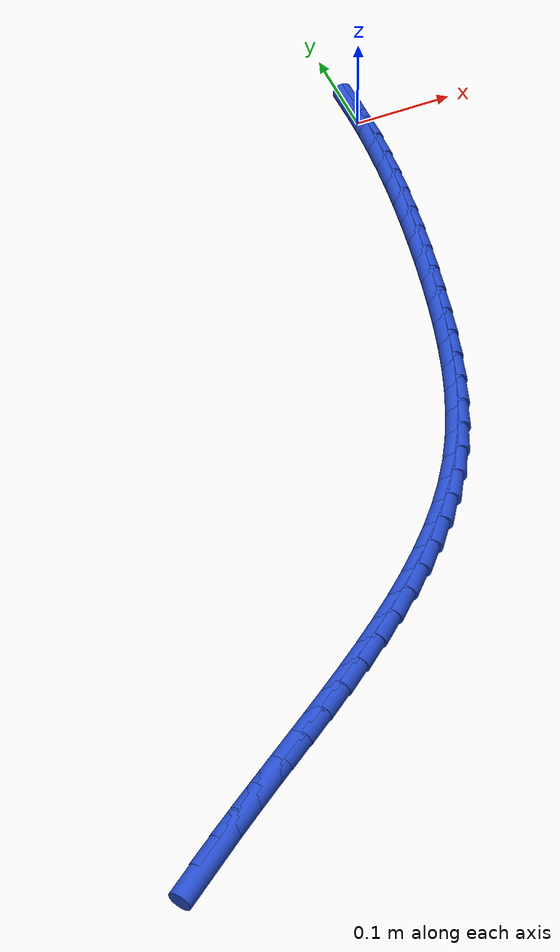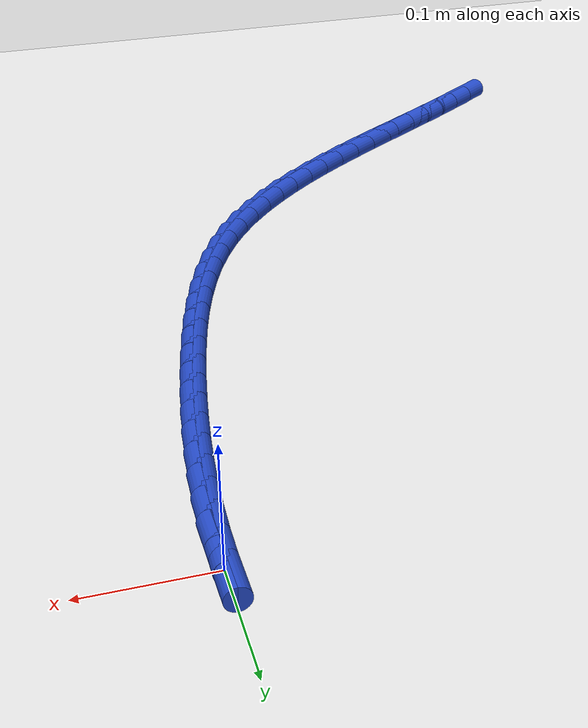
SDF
<sdf version="1.6">
 <world name="default">
  <model name="ground_plane">
   <static>1</static>
   <link name="link">
    <collision name="collision">
     <geometry><plane><normal>0 0 1</normal><size>100 100</size></plane></geometry>
     <surface><friction><ode><mu>100</mu><mu2>50</mu2></ode></friction></surface>
    </collision>
    <visual name="visual">
     <cast_shadows>0</cast_shadows>
     <geometry><plane><normal>0 0 1</normal><size>100 100</size></plane></geometry>
     <material>
      <script><uri>file://media/materials/scripts/gazebo.material</uri><name>Gazebo/WhiteGlow</name></script>
     </material>
    </visual>
   </link>
  </model>
  <model name="line">
   <link name="link_0">
    <pose>-3.903127820947816e-18 6.938893903907228e-18 0.01 0 1.57 -1.5632918332255343</pose>
    <collision name="collision">
     <geometry><cylinder><radius>0.01</radius><length>0.08</length></cylinder></geometry>
    </collision>
    <visual name="visual">
     <material>
      <script><name>Gazebo/Blue</name><uri>file://media/materials/scripts/gazebo.material</uri></script>
     </material>
     <geometry><cylinder><radius>0.01</radius><length>0.08</length></cylinder></geometry>
    </visual>
   </link>
   <link name="link_247">
    <pose>-0.42620396112056413 -0.7012345294933433 0.01 0 1.57 0.6145692367550575</pose>
    <collision name="collision">
     <geometry><cylinder><radius>0.01</radius><length>0.08</length></cylinder></geometry>
    </collision>
    <visual name="visual">
     <material>
      <script><name>Gazebo/Blue</name><uri>file://media/materials/scripts/gazebo.material</uri></script>
     </material>
     <geometry><cylinder><radius>0.01</radius><length>0.08</length></cylinder></geometry>
    </visual>
   </link>
   <link name="link_248">
    <pose>-0.4040197817349789 -0.6855782234387857 0.01 0 1.57 0.5976466242424567</pose>
    <collision name="collision">
     <geometry><cylinder><radius>0.01</radius><length>0.08</length></cylinder></geometry>
    </collision>
    <visual name="visual">
     <material>
      <script><name>Gazebo/Blue</name><uri>file://media/materials/scripts/gazebo.material</uri></script>
     </material>
     <geometry><cylinder><radius>0.01</radius><length>0.08</length></cylinder></geometry>
    </visual>
   </link>
   <link name="link_249">
    <pose>-0.38150517982631055 -0.6702528153913294 0.01 0 1.57 0.5863186061460995</pose>
    <collision name="collision">
     <geometry><cylinder><radius>0.01</radius><length>0.08</length></cylinder></geometry>
    </collision>
    <visual name="visual">
     <material>
      <script><name>Gazebo/Blue</name><uri>file://media/materials/scripts/gazebo.material</uri></script>
     </material>
     <geometry><cylinder><radius>0.01</radius><length>0.08</length></cylinder></geometry>
    </visual>
   </link>
   <link name="link_250">
    <pose>-0.35878160303702394 -0.655158976019115 0.01 0 1.57 0.5805054471684548</pose>
    <collision name="collision">
     <geometry><cylinder><radius>0.01</radius><length>0.08</length></cylinder></geometry>
    </collision>
    <visual name="visual">
     <material>
      <script><name>Gazebo/Blue</name><uri>file://media/materials/scripts/gazebo.material</uri></script>
     </material>
     <geometry><cylinder><radius>0.01</radius><length>0.08</length></cylinder></geometry>
    </visual>
   </link>
   <link name="link_251">
    <pose>-0.3359704990095841 -0.6401973759902838 0.01 0 1.57 0.5801780808849343</pose>
    <collision name="collision">
     <geometry><cylinder><radius>0.01</radius><length>0.08</length></cylinder></geometry>
    </collision>
    <visual name="visual">
     <material>
      <script><name>Gazebo/Blue</name><uri>file://media/materials/scripts/gazebo.material</uri></script>
     </material>
     <geometry><cylinder><radius>0.01</radius><length>0.08</length></cylinder></geometry>
    </visual>
   </link>
   <link name="link_252">
    <pose>-0.31319331538645534 -0.6252686859729762 0.01 0 1.57 0.5853629756957797</pose>
    <collision name="collision">
     <geometry><cylinder><radius>0.01</radius><length>0.08</length></cylinder></geometry>
    </collision>
    <visual name="visual">
     <material>
      <script><name>Gazebo/Blue</name><uri>file://media/materials/scripts/gazebo.material</uri></script>
     </material>
     <geometry><cylinder><radius>0.01</radius><length>0.08</length></cylinder></geometry>
    </visual>
   </link>
   <link name="link_253">
    <pose>-0.2905714998101042 -0.6102735766353347 0.01 0 1.57 0.596143353587766</pose>
    <collision name="collision">
     <geometry><cylinder><radius>0.01</radius><length>0.08</length></cylinder></geometry>
    </collision>
    <visual name="visual">
     <material>
      <script><name>Gazebo/Blue</name><uri>file://media/materials/scripts/gazebo.material</uri></script>
     </material>
     <geometry><cylinder><radius>0.01</radius><length>0.08</length></cylinder></geometry>
    </visual>
   </link>
   <link name="link_254">
    <pose>-0.26822649992299497 -0.5951127186454992 0.01 0 1.57 0.612656656573529</pose>
    <collision name="collision">
     <geometry><cylinder><radius>0.01</radius><length>0.08</length></cylinder></geometry>
    </collision>
    <visual name="visual">
     <material>
      <script><name>Gazebo/Blue</name><uri>file://media/materials/scripts/gazebo.material</uri></script>
     </material>
     <geometry><cylinder><radius>0.01</radius><length>0.08</length></cylinder></geometry>
    </visual>
   </link>
   <link name="link_255">
    <pose>-0.24627976336759252 -0.5796867826716113 0.01 0 1.57 0.6350874894300412</pose>
    <collision name="collision">
     <geometry><cylinder><radius>0.01</radius><length>0.08</length></cylinder></geometry>
    </collision>
    <visual name="visual">
     <material>
      <script><name>Gazebo/Blue</name><uri>file://media/materials/scripts/gazebo.material</uri></script>
     </material>
     <geometry><cylinder><radius>0.01</radius><length>0.08</length></cylinder></geometry>
    </visual>
   </link>
   <link name="link_256">
    <pose>-0.22485273778636208 -0.563896439381812 0.01 0 1.57 0.6636545876396727</pose>
    <collision name="collision">
     <geometry><cylinder><radius>0.01</radius><length>0.08</length></cylinder></geometry>
    </collision>
    <visual name="visual">
     <material>
      <script><name>Gazebo/Blue</name><uri>file://media/materials/scripts/gazebo.material</uri></script>
     </material>
     <geometry><cylinder><radius>0.01</radius><length>0.08</length></cylinder></geometry>
    </visual>
   </link>
   <link name="link_257">
    <pose>-0.20406687082176847 -0.547642359444242 0.01 0 1.57 0.6985897486158611</pose>
    <collision name="collision">
     <geometry><cylinder><radius>0.01</radius><length>0.08</length></cylinder></geometry>
    </collision>
    <visual name="visual">
     <material>
      <script><name>Gazebo/Blue</name><uri>file://media/materials/scripts/gazebo.material</uri></script>
     </material>
     <geometry><cylinder><radius>0.01</radius><length>0.08</length></cylinder></geometry>
    </visual>
   </link>
   <link name="link_258">
    <pose>-0.18404361011627682 -0.5308252135270429 0.01 0 1.57 0.7401063209149789</pose>
    <collision name="collision">
     <geometry><cylinder><radius>0.01</radius><length>0.08</length></cylinder></geometry>
    </collision>
    <visual name="visual">
     <material>
      <script><name>Gazebo/Blue</name><uri>file://media/materials/scripts/gazebo.material</uri></script>
     </material>
     <geometry><cylinder><radius>0.01</radius><length>0.08</length></cylinder></geometry>
    </visual>
   </link>
   <link name="link_259">
    <pose>-0.1649044033123521 -0.5133456722983555 0.01 0 1.57 0.7883551498994229</pose>
    <collision name="collision">
     <geometry><cylinder><radius>0.01</radius><length>0.08</length></cylinder></geometry>
    </collision>
    <visual name="visual">
     <material>
      <script><name>Gazebo/Blue</name><uri>file://media/materials/scripts/gazebo.material</uri></script>
     </material>
     <geometry><cylinder><radius>0.01</radius><length>0.08</length></cylinder></geometry>
    </visual>
   </link>
   <link name="link_260">
    <pose>-0.14677069805245932 -0.49510440642632064 0.01 0 1.57 0.8433674096380361</pose>
    <collision name="collision">
     <geometry><cylinder><radius>0.01</radius><length>0.08</length></cylinder></geometry>
    </collision>
    <visual name="visual">
     <material>
      <script><name>Gazebo/Blue</name><uri>file://media/materials/scripts/gazebo.material</uri></script>
     </material>
     <geometry><cylinder><radius>0.01</radius><length>0.08</length></cylinder></geometry>
    </visual>
   </link>
   <link name="link_261">
    <pose>-0.12976394197906305 -0.47600208657907933 0.01 0 1.57 0.9049871556994139</pose>
    <collision name="collision">
     <geometry><cylinder><radius>0.01</radius><length>0.08</length></cylinder></geometry>
    </collision>
    <visual name="visual">
     <material>
      <script><name>Gazebo/Blue</name><uri>file://media/materials/scripts/gazebo.material</uri></script>
     </material>
     <geometry><cylinder><radius>0.01</radius><length>0.08</length></cylinder></geometry>
    </visual>
   </link>
   <link name="link_262">
    <pose>-0.11400558273462932 -0.45593938342477347 0.01 0 1.57 0.9728019785258956</pose>
    <collision name="collision">
     <geometry><cylinder><radius>0.01</radius><length>0.08</length></cylinder></geometry>
    </collision>
    <visual name="visual">
     <material>
      <script><name>Gazebo/Blue</name><uri>file://media/materials/scripts/gazebo.material</uri></script>
     </material>
     <geometry><cylinder><radius>0.01</radius><length>0.08</length></cylinder></geometry>
    </visual>
   </link>
   <link name="link_263">
    <pose>-0.09961706796162262 -0.4348169676315436 0.01 0 1.57 1.044193032511923</pose>
    <collision name="collision">
     <geometry><cylinder><radius>0.01</radius><length>0.08</length></cylinder></geometry>
    </collision>
    <visual name="visual">
     <material>
      <script><name>Gazebo/Blue</name><uri>file://media/materials/scripts/gazebo.material</uri></script>
     </material>
     <geometry><cylinder><radius>0.01</radius><length>0.08</length></cylinder></geometry>
    </visual>
   </link>
   <link name="link_264">
    <pose>-0.08668420015085884 -0.41257120747300197 0.01 0 1.57 1.1099541070513916</pose>
    <collision name="collision">
     <geometry><cylinder><radius>0.01</radius><length>0.08</length></cylinder></geometry>
    </collision>
    <visual name="visual">
     <material>
      <script><name>Gazebo/Blue</name><uri>file://media/materials/scripts/gazebo.material</uri></script>
     </material>
     <geometry><cylinder><radius>0.01</radius><length>0.08</length></cylinder></geometry>
    </visual>
   </link>
   <link name="link_265">
    <pose>-0.07513055393451183 -0.3893009378087134 0.01 0 1.57 1.1677571336864623</pose>
    <collision name="collision">
     <geometry><cylinder><radius>0.01</radius><length>0.08</length></cylinder></geometry>
    </collision>
    <visual name="visual">
     <material>
      <script><name>Gazebo/Blue</name><uri>file://media/materials/scripts/gazebo.material</uri></script>
     </material>
     <geometry><cylinder><radius>0.01</radius><length>0.08</length></cylinder></geometry>
    </visual>
   </link>
   <link name="link_266">
    <pose>-0.06483357664576704 -0.36515118867611585 0.01 0 1.57 1.2179827677377615</pose>
    <collision name="collision">
     <geometry><cylinder><radius>0.01</radius><length>0.08</length></cylinder></geometry>
    </collision>
    <visual name="visual">
     <material>
      <script><name>Gazebo/Blue</name><uri>file://media/materials/scripts/gazebo.material</uri></script>
     </material>
     <geometry><cylinder><radius>0.01</radius><length>0.08</length></cylinder></geometry>
    </visual>
   </link>
   <link name="link_267">
    <pose>-0.055670712387754416 -0.3402669933474559 0.01 0 1.57 1.261102196311549</pose>
    <collision name="collision">
     <geometry><cylinder><radius>0.01</radius><length>0.08</length></cylinder></geometry>
    </collision>
    <visual name="visual">
     <material>
      <script><name>Gazebo/Blue</name><uri>file://media/materials/scripts/gazebo.material</uri></script>
     </material>
     <geometry><cylinder><radius>0.01</radius><length>0.08</length></cylinder></geometry>
    </visual>
   </link>
   <link name="link_268">
    <pose>-0.047519405263603855 -0.31479338509497995 0.01 0 1.57 1.29759910836948</pose>
    <collision name="collision">
     <geometry><cylinder><radius>0.01</radius><length>0.08</length></cylinder></geometry>
    </collision>
    <visual name="visual">
     <material>
      <script><name>Gazebo/Blue</name><uri>file://media/materials/scripts/gazebo.material</uri></script>
     </material>
     <geometry><cylinder><radius>0.01</radius><length>0.08</length></cylinder></geometry>
    </visual>
   </link>
   <link name="link_269">
    <pose>-0.04025709937644532 -0.28887539719093475 0.01 0 1.57 1.3279178866838268</pose>
    <collision name="collision">
     <geometry><cylinder><radius>0.01</radius><length>0.08</length></cylinder></geometry>
    </collision>
    <visual name="visual">
     <material>
      <script><name>Gazebo/Blue</name><uri>file://media/materials/scripts/gazebo.material</uri></script>
     </material>
     <geometry><cylinder><radius>0.01</radius><length>0.08</length></cylinder></geometry>
    </visual>
   </link>
   <link name="link_270">
    <pose>-0.03376123882940849 -0.2626580629075658 0.01 0 1.57 1.3524307546131669</pose>
    <collision name="collision">
     <geometry><cylinder><radius>0.01</radius><length>0.08</length></cylinder></geometry>
    </collision>
    <visual name="visual">
     <material>
      <script><name>Gazebo/Blue</name><uri>file://media/materials/scripts/gazebo.material</uri></script>
     </material>
     <geometry><cylinder><radius>0.01</radius><length>0.08</length></cylinder></geometry>
    </visual>
   </link>
   <link name="link_271">
    <pose>-0.02790926772562374 -0.2362864155171215 0.01 0 1.57 1.3715427185434685</pose>
    <collision name="collision">
     <geometry><cylinder><radius>0.01</radius><length>0.08</length></cylinder></geometry>
    </collision>
    <visual name="visual">
     <material>
      <script><name>Gazebo/Blue</name><uri>file://media/materials/scripts/gazebo.material</uri></script>
     </material>
     <geometry><cylinder><radius>0.01</radius><length>0.08</length></cylinder></geometry>
    </visual>
   </link>
   <link name="link_272">
    <pose>-0.022581507352724156 -0.20990262498188442 0.01 0 1.57 1.3886208715930384</pose>
    <collision name="collision">
     <geometry><cylinder><radius>0.01</radius><length>0.08</length></cylinder></geometry>
    </collision>
    <visual name="visual">
     <material>
      <script><name>Gazebo/Blue</name><uri>file://media/materials/scripts/gazebo.material</uri></script>
     </material>
     <geometry><cylinder><radius>0.01</radius><length>0.08</length></cylinder></geometry>
    </visual>
   </link>
   <link name="link_273">
    <pose>-0.01773164383535872 -0.18357585021166156 0.01 0 1.57 1.4070902784198505</pose>
    <collision name="collision">
     <geometry><cylinder><radius>0.01</radius><length>0.08</length></cylinder></geometry>
    </collision>
    <visual name="visual">
     <material>
      <script><name>Gazebo/Blue</name><uri>file://media/materials/scripts/gazebo.material</uri></script>
     </material>
     <geometry><cylinder><radius>0.01</radius><length>0.08</length></cylinder></geometry>
    </visual>
   </link>
   <link name="link_274">
    <pose>-0.013390959637270732 -0.15729802796712067 0.01 0 1.57 1.4271132403010836</pose>
    <collision name="collision">
     <geometry><cylinder><radius>0.01</radius><length>0.08</length></cylinder></geometry>
    </collision>
    <visual name="visual">
     <material>
      <script><name>Gazebo/Blue</name><uri>file://media/materials/scripts/gazebo.material</uri></script>
     </material>
     <geometry><cylinder><radius>0.01</radius><length>0.08</length></cylinder></geometry>
    </visual>
   </link>
   <link name="link_275">
    <pose>-0.009594461541432153 -0.1310573886493474 0.01 0 1.57 1.4486803925184875</pose>
    <collision name="collision">
     <geometry><cylinder><radius>0.01</radius><length>0.08</length></cylinder></geometry>
    </collision>
    <visual name="visual">
     <material>
      <script><name>Gazebo/Blue</name><uri>file://media/materials/scripts/gazebo.material</uri></script>
     </material>
     <geometry><cylinder><radius>0.01</radius><length>0.08</length></cylinder></geometry>
    </visual>
   </link>
   <link name="link_276">
    <pose>-0.006377156330814989 -0.10484216265942777 0.01 0 1.57 1.4717720983981397</pose>
    <collision name="collision">
     <geometry><cylinder><radius>0.01</radius><length>0.08</length></cylinder></geometry>
    </collision>
    <visual name="visual">
     <material>
      <script><name>Gazebo/Blue</name><uri>file://media/materials/scripts/gazebo.material</uri></script>
     </material>
     <geometry><cylinder><radius>0.01</radius><length>0.08</length></cylinder></geometry>
    </visual>
   </link>
   <link name="link_277">
    <pose>-0.0037740507883912092 -0.07864058039844743 0.01 0 1.57 1.4963569950085407</pose>
    <collision name="collision">
     <geometry><cylinder><radius>0.01</radius><length>0.08</length></cylinder></geometry>
    </collision>
    <visual name="visual">
     <material>
      <script><name>Gazebo/Blue</name><uri>file://media/materials/scripts/gazebo.material</uri></script>
     </material>
     <geometry><cylinder><radius>0.01</radius><length>0.08</length></cylinder></geometry>
    </visual>
   </link>
   <link name="link_278">
    <pose>-0.0018201516971327976 -0.05244087226749225 0.01 0 1.57 1.522390633604696</pose>
    <collision name="collision">
     <geometry><cylinder><radius>0.01</radius><length>0.08</length></cylinder></geometry>
    </collision>
    <visual name="visual">
     <material>
      <script><name>Gazebo/Blue</name><uri>file://media/materials/scripts/gazebo.material</uri></script>
     </material>
     <geometry><cylinder><radius>0.01</radius><length>0.08</length></cylinder></geometry>
    </visual>
   </link>
   <link name="link_279">
    <pose>-0.0005504658400117051 -0.026231268667647224 0.01 0 1.57 1.5498143047423674</pose>
    <collision name="collision">
     <geometry><cylinder><radius>0.01</radius><length>0.08</length></cylinder></geometry>
    </collision>
    <visual name="visual">
     <material>
      <script><name>Gazebo/Blue</name><uri>file://media/materials/scripts/gazebo.material</uri></script>
     </material>
     <geometry><cylinder><radius>0.01</radius><length>0.08</length></cylinder></geometry>
    </visual>
   </link>
   <link name="link_280">
    <pose>2.6020852139652106e-18 1.942890293094024e-16 0.01 0 1.57 -1.5630385055944436</pose>
    <collision name="collision">
     <geometry><cylinder><radius>0.01</radius><length>0.08</length></cylinder></geometry>
    </collision>
    <visual name="visual">
     <material>
      <script><name>Gazebo/Blue</name><uri>file://media/materials/scripts/gazebo.material</uri></script>
     </material>
     <geometry><cylinder><radius>0.01</radius><length>0.08</length></cylinder></geometry>
    </visual>
   </link>
  </model>
 </world>
</sdf>
